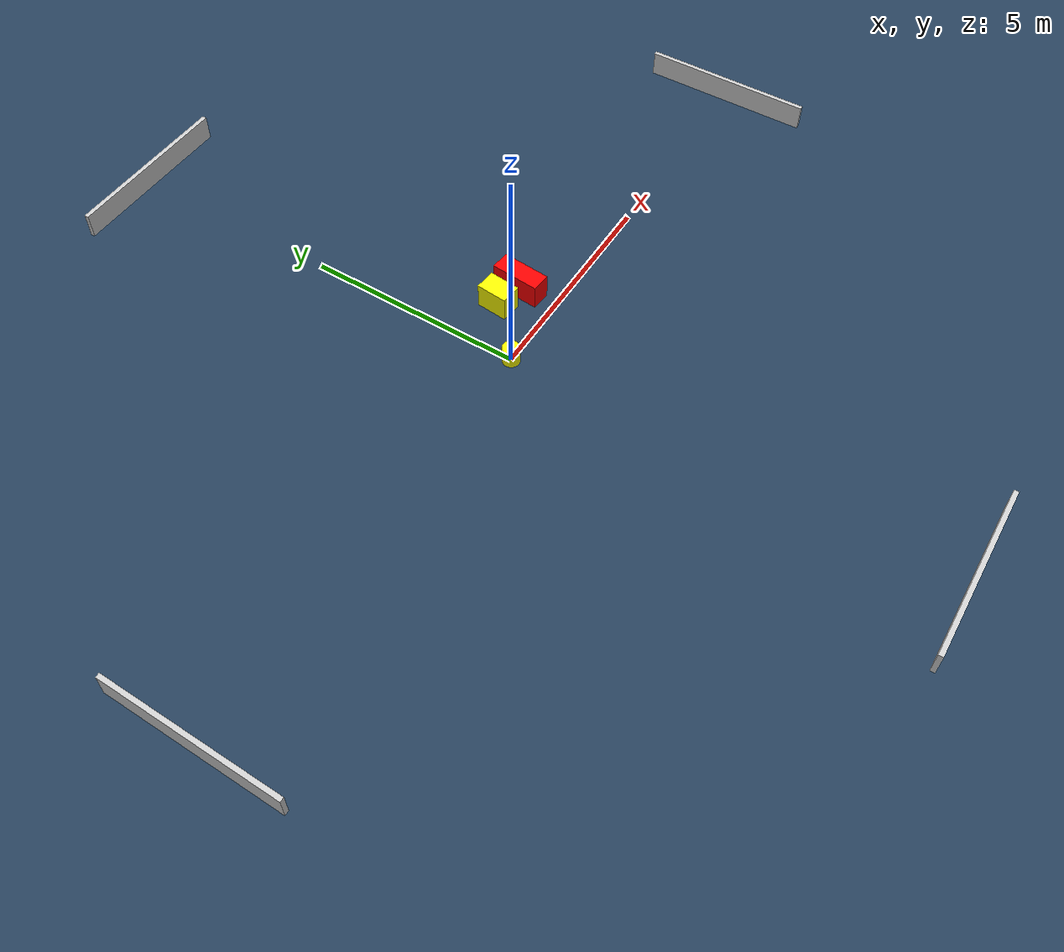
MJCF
<?xml version="1.0" ?>
<mujoco model="generated_environment">
  <option timestep="0.01" integrator="RK4" cone="elliptic"/>
  <default>
    <geom density="1"/>
  </default>
  <asset>
    <texture builtin="gradient" height="3072" name="skybox" rgb1="0.3 0.5 0.7" rgb2="0 0 0" type="skybox" width="512"/>
    <texture builtin="checker" height="300" name="groundplane" rgb1="0.2 0.3 0.4" rgb2="0.1 0.2 0.3" type="2d" width="300"/>
    <material name="groundplane" reflectance="0.2" texrepeat="5 5" texture="groundplane"/>
  </asset>
  <worldbody>
    <light dir="0 0 -1" directional="true" pos="0 0 1.5"/>
    <geom condim="3" friction="0.5 0.005 0.001" material="groundplane" name="floor" pos="0 0 0" size="0 0 0.05" type="plane"/>
    <body name="walls">
      <geom name="wall_1" condim="4" pos="-10.0 0.0 0.3" rgba="0.800000011920929 0.800000011920929 0.800000011920929 1.0" size="0.05 2.0 0.3" type="box"/>
      <geom name="wall_2" condim="4" pos="10.0 0.0 0.3" rgba="0.800000011920929 0.800000011920929 0.800000011920929 1.0" size="0.05 2.0 0.3" type="box"/>
      <geom name="wall_3" condim="4" pos="0.0 -10.0 0.3" rgba="0.800000011920929 0.800000011920929 0.800000011920929 1.0" size="2.0 0.05 0.3" type="box"/>
      <geom name="wall_4" condim="4" pos="0.0 10.0 0.3" rgba="0.800000011920929 0.800000011920929 0.800000011920929 1.0" size="2.0 0.05 0.3" type="box"/>
    </body>
    <body name="robot">
      <joint name="joint_x" type="slide" pos="0 0 0" axis="1 0 0"/>
      <joint name="joint_y" type="slide" pos="0 0 0" axis="0 1 0"/>
      <geom name="robot" type="cylinder" pos="0.0 0.0 0.2" size="0.2 0.2 0.0" mass="5.0" friction="1.0 0.005 0.0001" condim="4" rgba="1.0 1.0 0.0 1.0"/>
    </body>
    <body name="obstacle_1_movable">
      <geom name="obstacle_1_movable" condim="4" pos="1.1417104719017166 1.0534266271593005 0.3" euler="0 0 84.83983954868793" friction="0.0 0.005 0.001" rgba="1.0 1.0 0.0 1.0" size="0.35915054276927605 0.2410182822070946 0.3" type="box" mass="0.1"/>
      <joint type="free"/>
    </body>
    <body name="obstacle_2_static">
      <geom name="obstacle_2_static" condim="4" pos="1.7810355848588402 0.8908283318910803 0.3" euler="0 0 355.15547291906876" friction="0.0 0.005 0.001" rgba="1.0 0.0 0.0 1.0" size="0.22089580501774275 0.5579947918317494 0.3" type="box"/>
    </body>
  </worldbody>
  <actuator>
    <motor name="actuator_x" joint="joint_x" gear="1" ctrlrange="-1 1"/>
    <motor name="actuator_y" joint="joint_y" gear="1" ctrlrange="-1 1"/>
  </actuator>
</mujoco>
